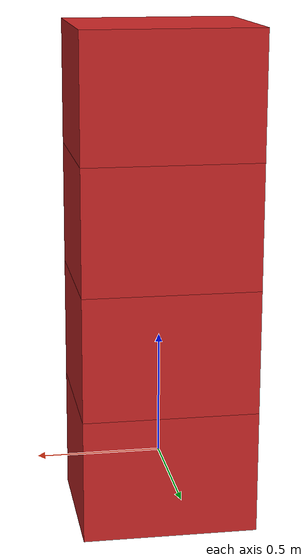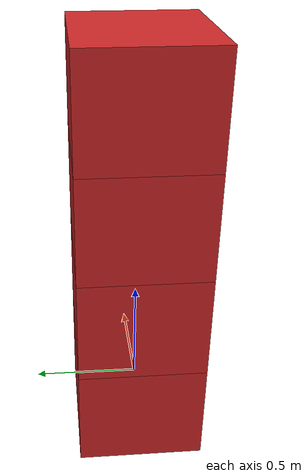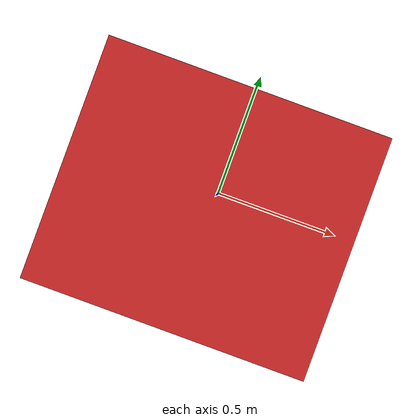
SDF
<?xml version="1.0" encoding="UTF-8"?>
<sdf version='1.4'>
    <model name="baggage_A_x4">
        <model name="baggage_A_0">
            <static>true</static>
            <link name="link">
                <collision name="collision">
                    <geometry>
                    <box>
                        <size>0.7 0.6 0.5</size>
                    </box>
                    </geometry>
                </collision>
                <visual name="visual">
                    <geometry>
                    <box>
                        <size>0.7 0.6 0.5</size>
                    </box>
                    </geometry>
                    <material>
                    <script>
                        <uri>file://media/materials/scripts/gazebo.material</uri>
                        <name>Gazebo/Red</name>
                    </script>
                    </material>
                </visual>
            </link>
            <pose frame=''>0 0 0 0 0 0</pose>
        </model>
        <model name="baggage_A_1">
            <static>true</static>
            <link name="link">
                <collision name="collision">
                    <geometry>
                    <box>
                        <size>0.7 0.6 0.5</size>
                    </box>
                    </geometry>
                </collision>
                <visual name="visual">
                    <geometry>
                    <box>
                        <size>0.7 0.6 0.5</size>
                    </box>
                    </geometry>
                    <material>
                    <script>
                        <uri>file://media/materials/scripts/gazebo.material</uri>
                        <name>Gazebo/Red</name>
                    </script>
                    </material>
                </visual>
            </link>
            <pose frame=''>0 0 0.5 0 0 0</pose>
        </model>
        <model name="baggage_A_2">
            <static>true</static>
            <link name="link">
                <collision name="collision">
                    <geometry>
                    <box>
                        <size>0.7 0.6 0.5</size>
                    </box>
                    </geometry>
                </collision>
                <visual name="visual">
                    <geometry>
                    <box>
                        <size>0.7 0.6 0.5</size>
                    </box>
                    </geometry>
                    <material>
                    <script>
                        <uri>file://media/materials/scripts/gazebo.material</uri>
                        <name>Gazebo/Red</name>
                    </script>
                    </material>
                </visual>
            </link>
            <pose frame=''>0 0 1.0 0 0 0</pose>
        </model>
        <model name="baggage_A_3">
            <static>true</static>
            <link name="link">
                <collision name="collision">
                    <geometry>
                    <box>
                        <size>0.7 0.6 0.5</size>
                    </box>
                    </geometry>
                </collision>
                <visual name="visual">
                    <geometry>
                    <box>
                        <size>0.7 0.6 0.5</size>
                    </box>
                    </geometry>
                    <material>
                    <script>
                        <uri>file://media/materials/scripts/gazebo.material</uri>
                        <name>Gazebo/Red</name>
                    </script>
                    </material>
                </visual>
            </link>
            <pose frame=''>0 0 1.5 0 0 0</pose>
        </model>
    </model>
</sdf>
